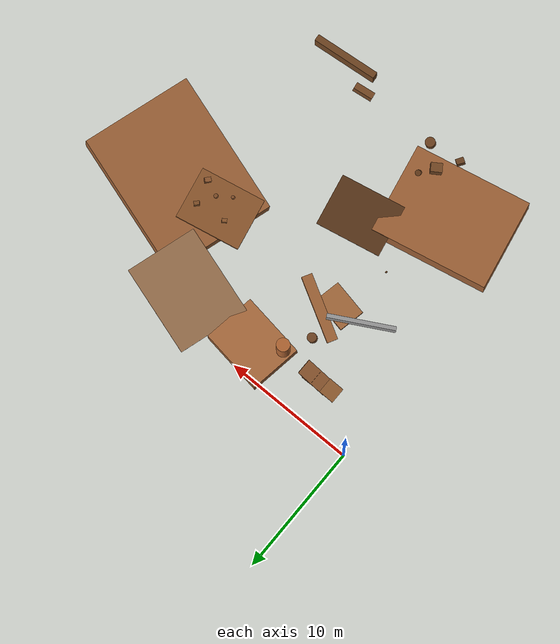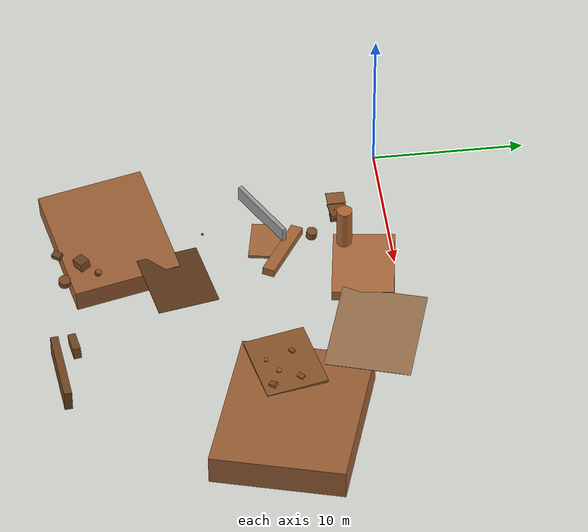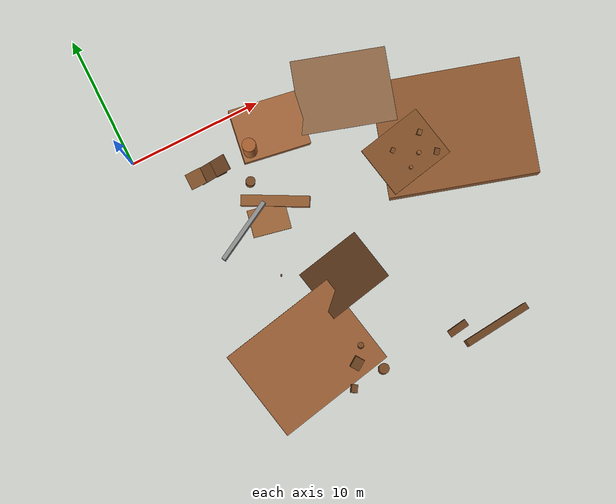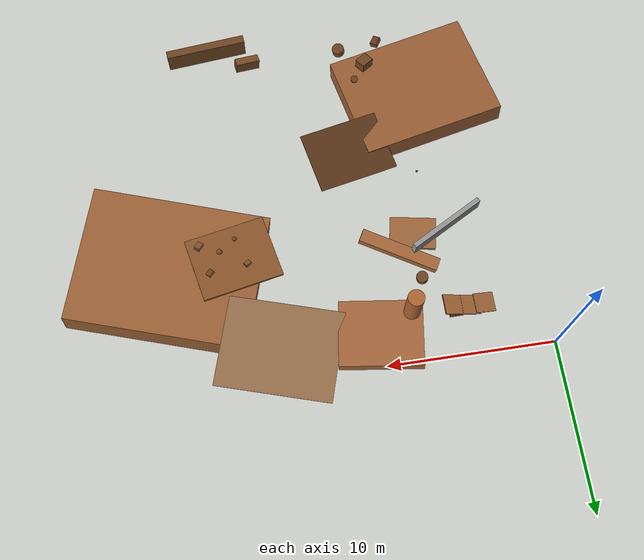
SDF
<sdf version="1.9">
 <world name="mars_test_world">
  <model name="hill_4">
   <static>true</static>
   <pose>10 -2 -0.2 0.03 0.07 -0.15</pose>
   <link name="link">
    <collision name="col">
     <geometry><box><size>5.0 4.0 0.8</size></box></geometry>
     <surface>
      <friction><ode><mu>1.0</mu><mu2>0.8</mu2></ode></friction>
      <contact><ode><kp>1e6</kp><kd>100</kd><max_vel>0.1</max_vel><min_depth>0.002</min_depth></ode></contact>
     </surface>
    </collision>
    <visual name="vis">
     <geometry><box><size>5.0 4.0 0.8</size></box></geometry>
     <material><ambient>0.61 0.38 0.22 1</ambient><diffuse>0.67 0.42 0.24 1</diffuse></material>
    </visual>
   </link>
  </model>
  <model name="ridge_2">
   <static>true</static>
   <pose>8 -7 -0.1 0.0 -0.12 -0.5</pose>
   <link name="link">
    <collision name="col">
     <geometry><box><size>5.0 0.8 0.5</size></box></geometry>
     <surface>
      <friction><ode><mu>1.0</mu><mu2>0.8</mu2></ode></friction>
      <contact><ode><kp>1e6</kp><kd>100</kd><max_vel>0.1</max_vel><min_depth>0.002</min_depth></ode></contact>
     </surface>
    </collision>
    <visual name="vis">
     <geometry><box><size>5.0 0.8 0.5</size></box></geometry>
     <material><ambient>0.57 0.35 0.19 1</ambient><diffuse>0.64 0.40 0.22 1</diffuse></material>
    </visual>
   </link>
  </model>
  <model name="steep_ramp">
   <static>true</static>
   <pose>5 -3 0.0 0.0 0.0 0.0</pose>
   <link name="link">
    <collision name="ramp_col">
     <pose>0 0 0.25 0.0 -0.44 0.0</pose>
     <geometry><box><size>2.5 1.2 0.08</size></box></geometry>
     <surface>
      <friction><ode><mu>1.2</mu><mu2>1.0</mu2></ode></friction>
      <contact><ode><kp>1e6</kp><kd>100</kd><max_vel>0.1</max_vel><min_depth>0.002</min_depth></ode></contact>
     </surface>
    </collision>
    <visual name="ramp_vis">
     <pose>0 0 0.25 0.0 -0.44 0.0</pose>
     <geometry><box><size>2.5 1.2 0.08</size></box></geometry>
     <material><ambient>0.50 0.30 0.16 1</ambient><diffuse>0.55 0.34 0.18 1</diffuse></material>
    </visual>
    <collision name="support_col">
     <pose>0.4 0 0.15 0.0 0.0 0.0</pose>
     <geometry><box><size>0.8 1.2 0.30</size></box></geometry>
     <surface>
      <friction><ode><mu>1.0</mu><mu2>0.8</mu2></ode></friction>
      <contact><ode><kp>1e6</kp><kd>100</kd><max_vel>0.1</max_vel><min_depth>0.002</min_depth></ode></contact>
     </surface>
    </collision>
    <visual name="support_vis">
     <pose>0.4 0 0.15 0.0 0.0 0.0</pose>
     <geometry><box><size>0.8 1.2 0.30</size></box></geometry>
     <material><ambient>0.45 0.28 0.14 1</ambient><diffuse>0.50 0.30 0.16 1</diffuse></material>
    </visual>
   </link>
  </model>
  <model name="ramp_approach">
   <static>true</static>
   <pose>3.6 -3 0.0 0.0 -0.12 0.0</pose>
   <link name="link">
    <collision name="col">
     <geometry><box><size>1.2 1.2 0.06</size></box></geometry>
     <surface>
      <friction><ode><mu>1.2</mu><mu2>1.0</mu2></ode></friction>
      <contact><ode><kp>1e6</kp><kd>100</kd><max_vel>0.1</max_vel><min_depth>0.002</min_depth></ode></contact>
     </surface>
    </collision>
    <visual name="vis">
     <geometry><box><size>1.2 1.2 0.06</size></box></geometry>
     <material><ambient>0.52 0.32 0.17 1</ambient><diffuse>0.57 0.36 0.19 1</diffuse></material>
    </visual>
   </link>
  </model>
  <model name="boulder_2">
   <static>true</static>
   <pose>7 -5 0.25 -0.12 0.08 -0.4</pose>
   <link name="link">
    <collision name="col">
     <geometry><cylinder><radius>0.35</radius><length>0.50</length></cylinder></geometry>
     <surface>
      <friction><ode><mu>0.9</mu><mu2>0.7</mu2></ode></friction>
      <contact><ode><kp>1e6</kp><kd>100</kd><max_vel>0.1</max_vel><min_depth>0.002</min_depth></ode></contact>
     </surface>
    </collision>
    <visual name="vis">
     <geometry><cylinder><radius>0.35</radius><length>0.50</length></cylinder></geometry>
     <material><ambient>0.42 0.26 0.13 1</ambient><diffuse>0.47 0.29 0.15 1</diffuse></material>
    </visual>
   </link>
  </model>
  <model name="hill_7">
   <static>true</static>
   <pose>5 -18 -0.7 0.06 0.04 0.2</pose>
   <link name="link">
    <collision name="col">
     <geometry><box><size>9.0 7.0 1.5</size></box></geometry>
     <surface>
      <friction><ode><mu>1.0</mu><mu2>0.8</mu2></ode></friction>
      <contact><ode><kp>1e6</kp><kd>100</kd><max_vel>0.1</max_vel><min_depth>0.002</min_depth></ode></contact>
     </surface>
    </collision>
    <visual name="vis">
     <geometry><box><size>9.0 7.0 1.5</size></box></geometry>
     <material><ambient>0.56 0.34 0.19 1</ambient><diffuse>0.62 0.38 0.21 1</diffuse></material>
    </visual>
   </link>
  </model>
  <model name="hill_9">
   <static>true</static>
   <pose>22 -8 -0.9 0.03 -0.07 -0.3</pose>
   <link name="link">
    <collision name="col">
     <geometry><box><size>11.0 8.5 1.9</size></box></geometry>
     <surface>
      <friction><ode><mu>1.0</mu><mu2>0.8</mu2></ode></friction>
      <contact><ode><kp>1e6</kp><kd>100</kd><max_vel>0.1</max_vel><min_depth>0.002</min_depth></ode></contact>
     </surface>
    </collision>
    <visual name="vis">
     <geometry><box><size>11.0 8.5 1.9</size></box></geometry>
     <material><ambient>0.55 0.34 0.19 1</ambient><diffuse>0.61 0.38 0.21 1</diffuse></material>
    </visual>
   </link>
  </model>
  <model name="ruin_wall_n">
   <static>true</static>
   <pose>18 -22 0.7 0.0 0.0 0.1</pose>
   <link name="link">
    <collision name="col">
     <geometry><box><size>5.0 0.5 1.4</size></box></geometry>
     <surface>
      <friction><ode><mu>1.0</mu><mu2>0.8</mu2></ode></friction>
      <contact><ode><kp>1e6</kp><kd>100</kd><max_vel>0.1</max_vel><min_depth>0.002</min_depth></ode></contact>
     </surface>
    </collision>
    <visual name="vis">
     <geometry><box><size>5.0 0.5 1.4</size></box></geometry>
     <material><ambient>0.38 0.23 0.11 1</ambient><diffuse>0.44 0.27 0.13 1</diffuse></material>
    </visual>
   </link>
  </model>
  <model name="ruin_wall_stub">
   <static>true</static>
   <pose>15.5 -21 0.4 0.05 -0.1 0.15</pose>
   <link name="link">
    <collision name="col">
     <geometry><box><size>1.5 0.5 0.8</size></box></geometry>
     <surface>
      <friction><ode><mu>1.0</mu><mu2>0.8</mu2></ode></friction>
      <contact><ode><kp>1e6</kp><kd>100</kd><max_vel>0.1</max_vel><min_depth>0.002</min_depth></ode></contact>
     </surface>
    </collision>
    <visual name="vis">
     <geometry><box><size>1.5 0.5 0.8</size></box></geometry>
     <material><ambient>0.40 0.25 0.12 1</ambient><diffuse>0.46 0.28 0.14 1</diffuse></material>
    </visual>
   </link>
  </model>
  <model name="rf2_base">
   <static>true</static>
   <pose>18 -8 -0.08 0.03 -0.02 0.2</pose>
   <link name="link">
    <collision name="col">
     <geometry><box><size>5.0 4.0 0.18</size></box></geometry>
     <surface>
      <friction><ode><mu>0.9</mu><mu2>0.7</mu2></ode></friction>
      <contact><ode><kp>1e6</kp><kd>100</kd><max_vel>0.1</max_vel><min_depth>0.002</min_depth></ode></contact>
     </surface>
    </collision>
    <visual name="vis">
     <geometry><box><size>5.0 4.0 0.18</size></box></geometry>
     <material><ambient>0.50 0.30 0.15 1</ambient><diffuse>0.55 0.34 0.17 1</diffuse></material>
    </visual>
   </link>
  </model>
  <model name="rf2_rock_1">
   <static>true</static>
   <pose>17.2 -7.5 0.08 0.2 -0.1 0.6</pose>
   <link name="link">
    <collision name="col">
     <geometry><box><size>0.38 0.28 0.20</size></box></geometry>
     <surface>
      <friction><ode><mu>0.9</mu><mu2>0.7</mu2></ode></friction>
      <contact><ode><kp>1e6</kp><kd>100</kd><max_vel>0.1</max_vel><min_depth>0.002</min_depth></ode></contact>
     </surface>
    </collision>
    <visual name="vis">
     <geometry><box><size>0.38 0.28 0.20</size></box></geometry>
     <material><ambient>0.46 0.28 0.14 1</ambient><diffuse>0.52 0.32 0.16 1</diffuse></material>
    </visual>
   </link>
  </model>
  <model name="rf2_rock_2">
   <static>true</static>
   <pose>18.8 -8.5 0.06 -0.15 0.25 -0.3</pose>
   <link name="link">
    <collision name="col">
     <geometry><cylinder><radius>0.16</radius><length>0.18</length></cylinder></geometry>
     <surface>
      <friction><ode><mu>0.9</mu><mu2>0.7</mu2></ode></friction>
      <contact><ode><kp>1e6</kp><kd>100</kd><max_vel>0.1</max_vel><min_depth>0.002</min_depth></ode></contact>
     </surface>
    </collision>
    <visual name="vis">
     <geometry><cylinder><radius>0.16</radius><length>0.18</length></cylinder></geometry>
     <material><ambient>0.48 0.29 0.15 1</ambient><diffuse>0.54 0.33 0.17 1</diffuse></material>
    </visual>
   </link>
  </model>
  <model name="rf2_rock_3">
   <static>true</static>
   <pose>19.5 -7.2 0.10 0.3 0.1 0.8</pose>
   <link name="link">
    <collision name="col">
     <geometry><box><size>0.42 0.32 0.24</size></box></geometry>
     <surface>
      <friction><ode><mu>0.9</mu><mu2>0.7</mu2></ode></friction>
      <contact><ode><kp>1e6</kp><kd>100</kd><max_vel>0.1</max_vel><min_depth>0.002</min_depth></ode></contact>
     </surface>
    </collision>
    <visual name="vis">
     <geometry><box><size>0.42 0.32 0.24</size></box></geometry>
     <material><ambient>0.44 0.27 0.13 1</ambient><diffuse>0.50 0.31 0.15 1</diffuse></material>
    </visual>
   </link>
  </model>
  <model name="rf2_rock_4">
   <static>true</static>
   <pose>17.8 -9.2 0.07 -0.2 0.3 -0.5</pose>
   <link name="link">
    <collision name="col">
     <geometry><cylinder><radius>0.13</radius><length>0.16</length></cylinder></geometry>
     <surface>
      <friction><ode><mu>0.9</mu><mu2>0.7</mu2></ode></friction>
      <contact><ode><kp>1e6</kp><kd>100</kd><max_vel>0.1</max_vel><min_depth>0.002</min_depth></ode></contact>
     </surface>
    </collision>
    <visual name="vis">
     <geometry><cylinder><radius>0.13</radius><length>0.16</length></cylinder></geometry>
     <material><ambient>0.50 0.31 0.16 1</ambient><diffuse>0.56 0.34 0.18 1</diffuse></material>
    </visual>
   </link>
  </model>
  <model name="rf2_rock_5">
   <static>true</static>
   <pose>20.0 -9.0 0.11 0.1 -0.25 0.9</pose>
   <link name="link">
    <collision name="col">
     <geometry><box><size>0.48 0.36 0.26</size></box></geometry>
     <surface>
      <friction><ode><mu>0.9</mu><mu2>0.7</mu2></ode></friction>
      <contact><ode><kp>1e6</kp><kd>100</kd><max_vel>0.1</max_vel><min_depth>0.002</min_depth></ode></contact>
     </surface>
    </collision>
    <visual name="vis">
     <geometry><box><size>0.48 0.36 0.26</size></box></geometry>
     <material><ambient>0.45 0.28 0.14 1</ambient><diffuse>0.51 0.31 0.16 1</diffuse></material>
    </visual>
   </link>
  </model>
  <model name="rock_s_6">
   <static>true</static>
   <pose>12 -1 0.04 0.3 -0.2 0.5</pose>
   <link name="link">
    <collision name="col">
     <geometry><box><size>0.15 0.11 0.09</size></box></geometry>
     <surface>
      <friction><ode><mu>0.9</mu><mu2>0.7</mu2></ode></friction>
      <contact><ode><kp>1e6</kp><kd>100</kd><max_vel>0.1</max_vel><min_depth>0.002</min_depth></ode></contact>
     </surface>
    </collision>
    <visual name="vis">
     <geometry><box><size>0.15 0.11 0.09</size></box></geometry>
     <material><ambient>0.49 0.30 0.15 1</ambient><diffuse>0.54 0.33 0.17 1</diffuse></material>
    </visual>
   </link>
  </model>
  <model name="rock_s_8">
   <static>true</static>
   <pose>6 -12 0.04 0.2 0.4 1.2</pose>
   <link name="link">
    <collision name="col">
     <geometry><box><size>0.13 0.10 0.08</size></box></geometry>
     <surface>
      <friction><ode><mu>0.9</mu><mu2>0.7</mu2></ode></friction>
      <contact><ode><kp>1e6</kp><kd>100</kd><max_vel>0.1</max_vel><min_depth>0.002</min_depth></ode></contact>
     </surface>
    </collision>
    <visual name="vis">
     <geometry><box><size>0.13 0.10 0.08</size></box></geometry>
     <material><ambient>0.51 0.32 0.16 1</ambient><diffuse>0.56 0.35 0.18 1</diffuse></material>
    </visual>
   </link>
  </model>
  <model name="micro_bump_4">
   <static>true</static>
   <pose>7 -8 -0.09 0.03 0.06 -0.2</pose>
   <link name="link">
    <collision name="col">
     <geometry><box><size>2.8 2.0 0.22</size></box></geometry>
     <surface>
      <friction><ode><mu>1.0</mu><mu2>0.8</mu2></ode></friction>
      <contact><ode><kp>1e6</kp><kd>100</kd><max_vel>0.1</max_vel><min_depth>0.002</min_depth></ode></contact>
     </surface>
    </collision>
    <visual name="vis">
     <geometry><box><size>2.8 2.0 0.22</size></box></geometry>
     <material><ambient>0.59 0.37 0.21 1</ambient><diffuse>0.64 0.41 0.23 1</diffuse></material>
    </visual>
   </link>
  </model>
  <model name="rocky_patch_1">
   <static>true</static>
   <pose>16 -2 0.01 0.0 0.0 -0.3</pose>
   <link name="link">
    <visual name="vis">
     <geometry><box><size>7.0 5.5 0.02</size></box></geometry>
     <material><ambient>0.55 0.40 0.28 1</ambient><diffuse>0.60 0.44 0.30 1</diffuse></material>
    </visual>
   </link>
  </model>
  <model name="dark_rock_patch">
   <static>true</static>
   <pose>10 -14 0.01 0.0 0.0 0.2</pose>
   <link name="link">
    <visual name="vis">
     <geometry><box><size>5.0 4.0 0.02</size></box></geometry>
     <material><ambient>0.30 0.18 0.08 1</ambient><diffuse>0.35 0.21 0.10 1</diffuse></material>
    </visual>
   </link>
  </model>
  <model name="obs_cluster_a">
   <static>true</static>
   <pose>8 -20 0.30 0.12 -0.08 0.6</pose>
   <link name="link">
    <collision name="col">
     <geometry><box><size>0.85 0.70 0.60</size></box></geometry>
     <surface>
      <friction><ode><mu>0.9</mu><mu2>0.7</mu2></ode></friction>
      <contact><ode><kp>1e6</kp><kd>100</kd><max_vel>0.1</max_vel><min_depth>0.002</min_depth></ode></contact>
     </surface>
    </collision>
    <visual name="vis">
     <geometry><box><size>0.85 0.70 0.60</size></box></geometry>
     <material><ambient>0.38 0.23 0.11 1</ambient><diffuse>0.44 0.27 0.13 1</diffuse></material>
    </visual>
   </link>
  </model>
  <model name="obs_cluster_b">
   <static>true</static>
   <pose>9.5 -21.2 0.22 -0.10 0.14 -0.4</pose>
   <link name="link">
    <collision name="col">
     <geometry><cylinder><radius>0.38</radius><length>0.44</length></cylinder></geometry>
     <surface>
      <friction><ode><mu>0.9</mu><mu2>0.7</mu2></ode></friction>
      <contact><ode><kp>1e6</kp><kd>100</kd><max_vel>0.1</max_vel><min_depth>0.002</min_depth></ode></contact>
     </surface>
    </collision>
    <visual name="vis">
     <geometry><cylinder><radius>0.38</radius><length>0.44</length></cylinder></geometry>
     <material><ambient>0.40 0.25 0.12 1</ambient><diffuse>0.46 0.28 0.14 1</diffuse></material>
    </visual>
   </link>
  </model>
  <model name="obs_cluster_c">
   <static>true</static>
   <pose>7.0 -21.5 0.18 0.25 0.05 1.0</pose>
   <link name="link">
    <collision name="col">
     <geometry><box><size>0.60 0.45 0.35</size></box></geometry>
     <surface>
      <friction><ode><mu>0.9</mu><mu2>0.7</mu2></ode></friction>
      <contact><ode><kp>1e6</kp><kd>100</kd><max_vel>0.1</max_vel><min_depth>0.002</min_depth></ode></contact>
     </surface>
    </collision>
    <visual name="vis">
     <geometry><box><size>0.60 0.45 0.35</size></box></geometry>
     <material><ambient>0.36 0.22 0.11 1</ambient><diffuse>0.42 0.26 0.13 1</diffuse></material>
    </visual>
   </link>
  </model>
  <model name="obs_cluster_d">
   <static>true</static>
   <pose>8.8 -19.0 0.10 -0.3 0.2 0.3</pose>
   <link name="link">
    <collision name="col">
     <geometry><cylinder><radius>0.22</radius><length>0.22</length></cylinder></geometry>
     <surface>
      <friction><ode><mu>0.9</mu><mu2>0.7</mu2></ode></friction>
      <contact><ode><kp>1e6</kp><kd>100</kd><max_vel>0.1</max_vel><min_depth>0.002</min_depth></ode></contact>
     </surface>
    </collision>
    <visual name="vis">
     <geometry><cylinder><radius>0.22</radius><length>0.22</length></cylinder></geometry>
     <material><ambient>0.42 0.26 0.13 1</ambient><diffuse>0.48 0.29 0.14 1</diffuse></material>
    </visual>
   </link>
  </model>
  <model name="slam_low_wall_1">
   <static>true</static>
   <pose>5 -8 0.5 0 0 0.5</pose>
   <link name="link">
    <collision name="col"><geometry><box><size>5.0 0.3 1.0</size></box></geometry></collision>
    <visual name="vis">
     <geometry><box><size>5.0 0.3 1.0</size></box></geometry>
     <material><ambient>0.6 0.6 0.6 1</ambient><diffuse>0.6 0.6 0.6 1</diffuse></material>
    </visual>
   </link>
  </model>
  <model name="slam_pillar_3">
   <static>true</static>
   <pose>8 -3 1.5 0 0 0</pose>
   <link name="link">
    <collision name="col">
     <geometry><cylinder><radius>0.5</radius><length>3.0</length></cylinder></geometry>
    </collision>
    <visual name="vis">
     <geometry><cylinder><radius>0.5</radius><length>3.0</length></cylinder></geometry>
     <material><ambient>0.5 0.3 0.1 1</ambient><diffuse>0.7 0.4 0.2 1</diffuse></material>
    </visual>
   </link>
  </model>
 </world>
</sdf>
